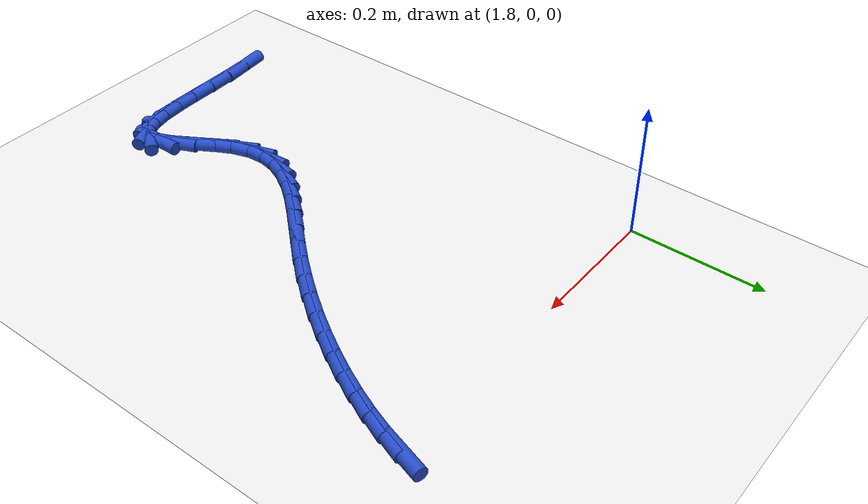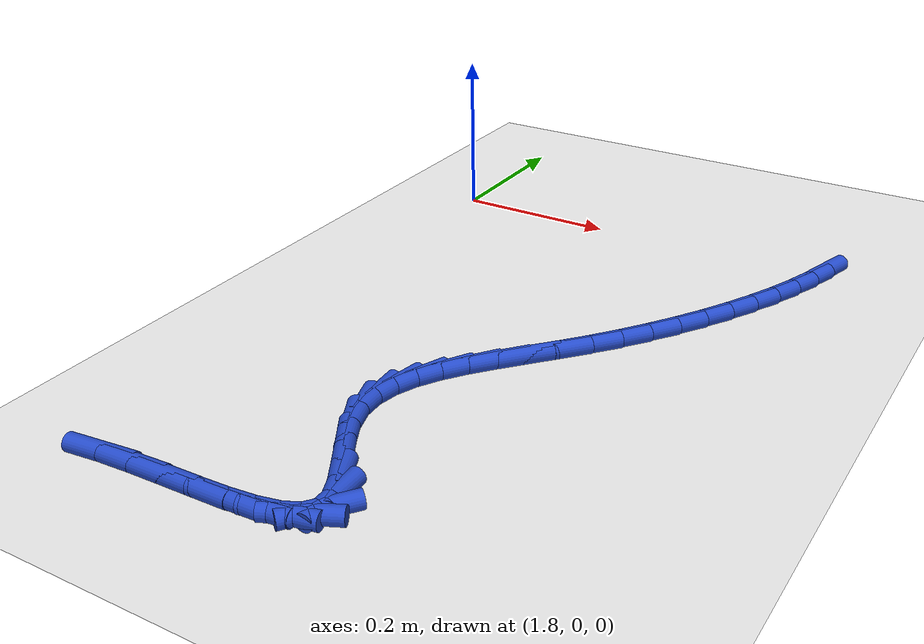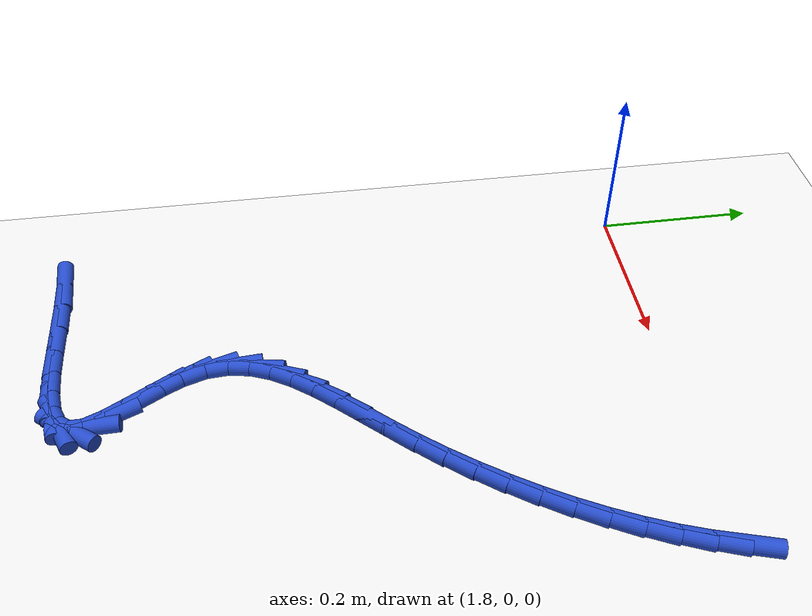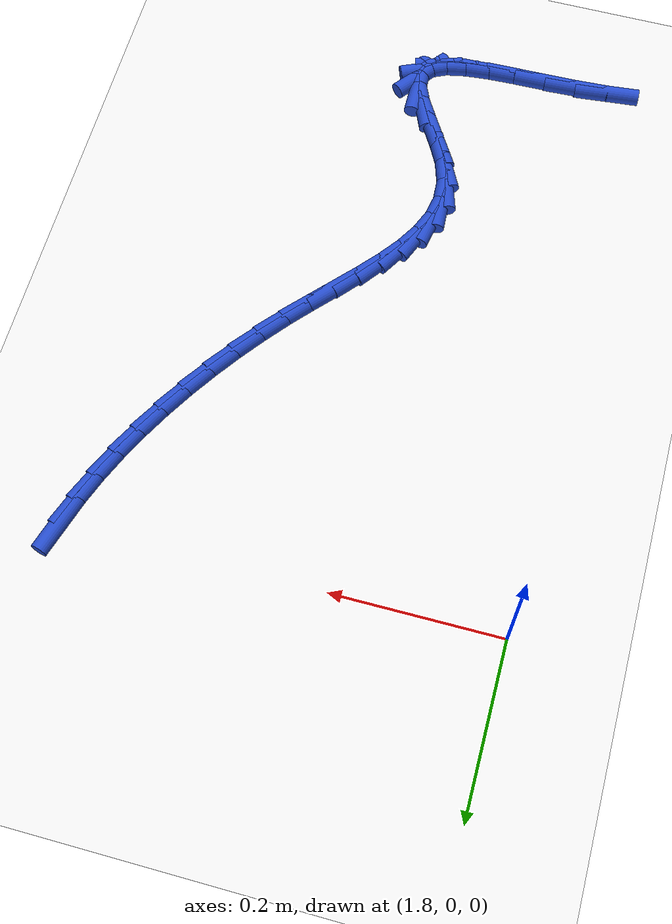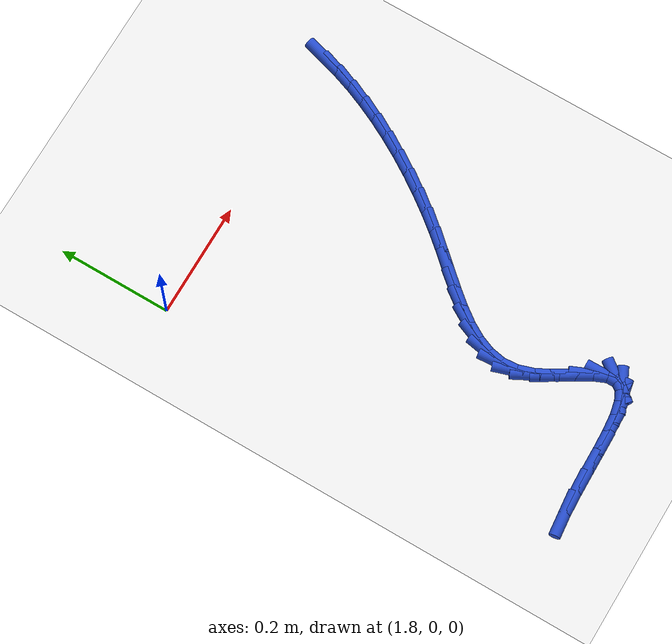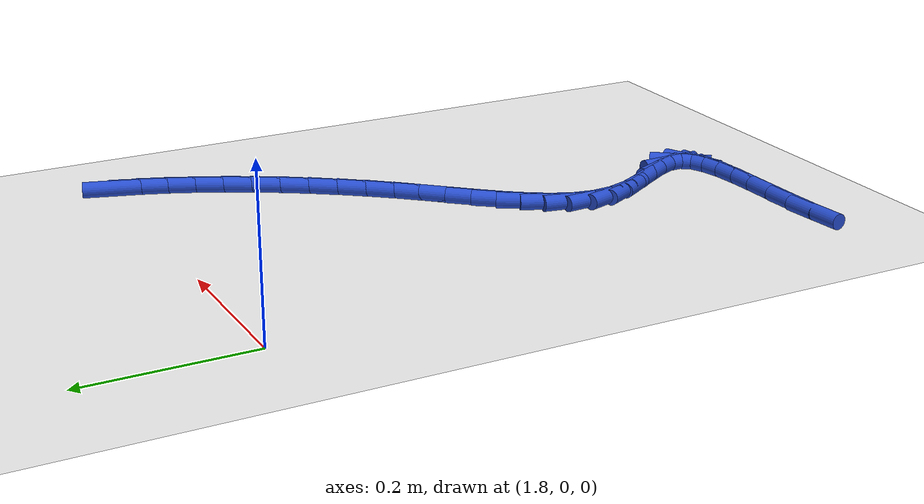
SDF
<sdf version="1.6">
 <world name="default">
  <model name="ground_plane">
   <static>1</static>
   <link name="link">
    <collision name="collision">
     <geometry><plane><normal>0 0 1</normal><size>100 100</size></plane></geometry>
     <surface><friction><ode><mu>100</mu><mu2>50</mu2></ode></friction></surface>
    </collision>
    <visual name="visual">
     <cast_shadows>0</cast_shadows>
     <geometry><plane><normal>0 0 1</normal><size>100 100</size></plane></geometry>
     <material>
      <script><uri>file://media/materials/scripts/gazebo.material</uri><name>Gazebo/WhiteGlow</name></script>
     </material>
    </visual>
   </link>
  </model>
  <model name="line">
   <link name="link_137">
    <pose>2.3043757729861003 0.0005063567734762131 0.01 0 1.57 1.282090099560398</pose>
    <collision name="collision">
     <geometry><cylinder><radius>0.01</radius><length>0.08</length></cylinder></geometry>
    </collision>
    <visual name="visual">
     <material>
      <script><name>Gazebo/Blue</name><uri>file://media/materials/scripts/gazebo.material</uri></script>
     </material>
     <geometry><cylinder><radius>0.01</radius><length>0.08</length></cylinder></geometry>
    </visual>
   </link>
   <link name="link_138">
    <pose>2.29511505952782 -0.03067404035095697 0.01 0 1.57 1.2250079994643701</pose>
    <collision name="collision">
     <geometry><cylinder><radius>0.01</radius><length>0.08</length></cylinder></geometry>
    </collision>
    <visual name="visual">
     <material>
      <script><name>Gazebo/Blue</name><uri>file://media/materials/scripts/gazebo.material</uri></script>
     </material>
     <geometry><cylinder><radius>0.01</radius><length>0.08</length></cylinder></geometry>
    </visual>
   </link>
   <link name="link_139">
    <pose>2.2837506471335614 -0.06221881323974488 0.01 0 1.57 1.1735758078880663</pose>
    <collision name="collision">
     <geometry><cylinder><radius>0.01</radius><length>0.08</length></cylinder></geometry>
    </collision>
    <visual name="visual">
     <material>
      <script><name>Gazebo/Blue</name><uri>file://media/materials/scripts/gazebo.material</uri></script>
     </material>
     <geometry><cylinder><radius>0.01</radius><length>0.08</length></cylinder></geometry>
    </visual>
   </link>
   <link name="link_140">
    <pose>2.2704356245568005 -0.09395746543543361 0.01 0 1.57 1.1266911585426547</pose>
    <collision name="collision">
     <geometry><cylinder><radius>0.01</radius><length>0.08</length></cylinder></geometry>
    </collision>
    <visual name="visual">
     <material>
      <script><name>Gazebo/Blue</name><uri>file://media/materials/scripts/gazebo.material</uri></script>
     </material>
     <geometry><cylinder><radius>0.01</radius><length>0.08</length></cylinder></geometry>
    </visual>
   </link>
   <link name="link_141">
    <pose>2.2553230805510127 -0.12571950048056946 0.01 0 1.57 1.0834113664984977</pose>
    <collision name="collision">
     <geometry><cylinder><radius>0.01</radius><length>0.08</length></cylinder></geometry>
    </collision>
    <visual name="visual">
     <material>
      <script><name>Gazebo/Blue</name><uri>file://media/materials/scripts/gazebo.material</uri></script>
     </material>
     <geometry><cylinder><radius>0.01</radius><length>0.08</length></cylinder></geometry>
    </visual>
   </link>
   <link name="link_142">
    <pose>2.2385661038696734 -0.15733442191769575 0.01 0 1.57 1.0429232118777647</pose>
    <collision name="collision">
     <geometry><cylinder><radius>0.01</radius><length>0.08</length></cylinder></geometry>
    </collision>
    <visual name="visual">
     <material>
      <script><name>Gazebo/Blue</name><uri>file://media/materials/scripts/gazebo.material</uri></script>
     </material>
     <geometry><cylinder><radius>0.01</radius><length>0.08</length></cylinder></geometry>
    </visual>
   </link>
   <link name="link_143">
    <pose>2.220317783266259 -0.18863173328935964 0.01 0 1.57 1.0045126916023308</pose>
    <collision name="collision">
     <geometry><cylinder><radius>0.01</radius><length>0.08</length></cylinder></geometry>
    </collision>
    <visual name="visual">
     <material>
      <script><name>Gazebo/Blue</name><uri>file://media/materials/scripts/gazebo.material</uri></script>
     </material>
     <geometry><cylinder><radius>0.01</radius><length>0.08</length></cylinder></geometry>
    </visual>
   </link>
   <link name="link_144">
    <pose>2.200731207494246 -0.21944093813810456 0.01 0 1.57 0.9675366140866258</pose>
    <collision name="collision">
     <geometry><cylinder><radius>0.01</radius><length>0.08</length></cylinder></geometry>
    </collision>
    <visual name="visual">
     <material>
      <script><name>Gazebo/Blue</name><uri>file://media/materials/scripts/gazebo.material</uri></script>
     </material>
     <geometry><cylinder><radius>0.01</radius><length>0.08</length></cylinder></geometry>
    </visual>
   </link>
   <link name="link_145">
    <pose>2.179959465307108 -0.2495915400064775 0.01 0 1.57 0.9313961160571534</pose>
    <collision name="collision">
     <geometry><cylinder><radius>0.01</radius><length>0.08</length></cylinder></geometry>
    </collision>
    <visual name="visual">
     <material>
      <script><name>Gazebo/Blue</name><uri>file://media/materials/scripts/gazebo.material</uri></script>
     </material>
     <geometry><cylinder><radius>0.01</radius><length>0.08</length></cylinder></geometry>
    </visual>
   </link>
   <link name="link_146">
    <pose>2.158155645458323 -0.2789130424370221 0.01 0 1.57 0.8955112801831502</pose>
    <collision name="collision">
     <geometry><cylinder><radius>0.01</radius><length>0.08</length></cylinder></geometry>
    </collision>
    <visual name="visual">
     <material>
      <script><name>Gazebo/Blue</name><uri>file://media/materials/scripts/gazebo.material</uri></script>
     </material>
     <geometry><cylinder><radius>0.01</radius><length>0.08</length></cylinder></geometry>
    </visual>
   </link>
   <link name="link_147">
    <pose>2.1354728367013647 -0.3072349489722852 0.01 0 1.57 0.860104357106073</pose>
    <collision name="collision">
     <geometry><cylinder><radius>0.01</radius><length>0.08</length></cylinder></geometry>
    </collision>
    <visual name="visual">
     <material>
      <script><name>Gazebo/Blue</name><uri>file://media/materials/scripts/gazebo.material</uri></script>
     </material>
     <geometry><cylinder><radius>0.01</radius><length>0.08</length></cylinder></geometry>
    </visual>
   </link>
   <link name="link_148">
    <pose>2.112089537823026 -0.33440169002918296 0.01 0 1.57 0.8378503249085305</pose>
    <collision name="collision">
     <geometry><cylinder><radius>0.01</radius><length>0.08</length></cylinder></geometry>
    </collision>
    <visual name="visual">
     <material>
      <script><name>Gazebo/Blue</name><uri>file://media/materials/scripts/gazebo.material</uri></script>
     </material>
     <geometry><cylinder><radius>0.01</radius><length>0.08</length></cylinder></geometry>
    </visual>
   </link>
   <link name="link_149">
    <pose>2.088595513644221 -0.36049929021496 0.01 0 1.57 0.8401139908336285</pose>
    <collision name="collision">
     <geometry><cylinder><radius>0.01</radius><length>0.08</length></cylinder></geometry>
    </collision>
    <visual name="visual">
     <material>
      <script><name>Gazebo/Blue</name><uri>file://media/materials/scripts/gazebo.material</uri></script>
     </material>
     <geometry><cylinder><radius>0.01</radius><length>0.08</length></cylinder></geometry>
    </visual>
   </link>
   <link name="link_150">
    <pose>2.0659137982494236 -0.38580954989076993 0.01 0 1.57 0.8698703260176944</pose>
    <collision name="collision">
     <geometry><cylinder><radius>0.01</radius><length>0.08</length></cylinder></geometry>
    </collision>
    <visual name="visual">
     <material>
      <script><name>Gazebo/Blue</name><uri>file://media/materials/scripts/gazebo.material</uri></script>
     </material>
     <geometry><cylinder><radius>0.01</radius><length>0.08</length></cylinder></geometry>
    </visual>
   </link>
   <link name="link_151">
    <pose>2.0449770198375883 -0.4106199053860429 0.01 0 1.57 0.932236184607205</pose>
    <collision name="collision">
     <geometry><cylinder><radius>0.01</radius><length>0.08</length></cylinder></geometry>
    </collision>
    <visual name="visual">
     <material>
      <script><name>Gazebo/Blue</name><uri>file://media/materials/scripts/gazebo.material</uri></script>
     </material>
     <geometry><cylinder><radius>0.01</radius><length>0.08</length></cylinder></geometry>
    </visual>
   </link>
   <link name="link_152">
    <pose>2.0267178066076705 -0.4352177930302092 0.01 0 1.57 1.0349997266308149</pose>
    <collision name="collision">
     <geometry><cylinder><radius>0.01</radius><length>0.08</length></cylinder></geometry>
    </collision>
    <visual name="visual">
     <material>
      <script><name>Gazebo/Blue</name><uri>file://media/materials/scripts/gazebo.material</uri></script>
     </material>
     <geometry><cylinder><radius>0.01</radius><length>0.08</length></cylinder></geometry>
    </visual>
   </link>
   <link name="link_153">
    <pose>2.012068786758626 -0.4598906491526967 0.01 0 1.57 1.1871227988503308</pose>
    <collision name="collision">
     <geometry><cylinder><radius>0.01</radius><length>0.08</length></cylinder></geometry>
    </collision>
    <visual name="visual">
     <material>
      <script><name>Gazebo/Blue</name><uri>file://media/materials/scripts/gazebo.material</uri></script>
     </material>
     <geometry><cylinder><radius>0.01</radius><length>0.08</length></cylinder></geometry>
    </visual>
   </link>
   <link name="link_154">
    <pose>2.0019625884894103 -0.48492591008293634 0.01 0 1.57 1.392423203795634</pose>
    <collision name="collision">
     <geometry><cylinder><radius>0.01</radius><length>0.08</length></cylinder></geometry>
    </collision>
    <visual name="visual">
     <material>
      <script><name>Gazebo/Blue</name><uri>file://media/materials/scripts/gazebo.material</uri></script>
     </material>
     <geometry><cylinder><radius>0.01</radius><length>0.08</length></cylinder></geometry>
    </visual>
   </link>
   <link name="link_155">
    <pose>1.9973318399989803 -0.5106110121503561 0.01 0 1.57 -1.504134516656553</pose>
    <collision name="collision">
     <geometry><cylinder><radius>0.01</radius><length>0.08</length></cylinder></geometry>
    </collision>
    <visual name="visual">
     <material>
      <script><name>Gazebo/Blue</name><uri>file://media/materials/scripts/gazebo.material</uri></script>
     </material>
     <geometry><cylinder><radius>0.01</radius><length>0.08</length></cylinder></geometry>
    </visual>
   </link>
   <link name="link_156">
    <pose>1.9991091694862908 -0.537233391684387 0.01 0 1.57 -1.2568264587689804</pose>
    <collision name="collision">
     <geometry><cylinder><radius>0.01</radius><length>0.08</length></cylinder></geometry>
    </collision>
    <visual name="visual">
     <material>
      <script><name>Gazebo/Blue</name><uri>file://media/materials/scripts/gazebo.material</uri></script>
     </material>
     <geometry><cylinder><radius>0.01</radius><length>0.08</length></cylinder></geometry>
    </visual>
   </link>
   <link name="link_157">
    <pose>2.00814152092044 -0.5650500361613857 0.01 0 1.57 -1.0885978490760049</pose>
    <collision name="collision">
     <geometry><cylinder><radius>0.01</radius><length>0.08</length></cylinder></geometry>
    </collision>
    <visual name="visual">
     <material>
      <script><name>Gazebo/Blue</name><uri>file://media/materials/scripts/gazebo.material</uri></script>
     </material>
     <geometry><cylinder><radius>0.01</radius><length>0.08</length></cylinder></geometry>
    </visual>
   </link>
   <link name="link_158">
    <pose>2.0230457985728565 -0.5935254634141084 0.01 0 1.57 -1.0209484523012322</pose>
    <collision name="collision">
     <geometry><cylinder><radius>0.01</radius><length>0.08</length></cylinder></geometry>
    </collision>
    <visual name="visual">
     <material>
      <script><name>Gazebo/Blue</name><uri>file://media/materials/scripts/gazebo.material</uri></script>
     </material>
     <geometry><cylinder><radius>0.01</radius><length>0.08</length></cylinder></geometry>
    </visual>
   </link>
   <link name="link_159">
    <pose>2.0400545253574847 -0.6212768745900701 0.01 0 1.57 -1.0341992672090168</pose>
    <collision name="collision">
     <geometry><cylinder><radius>0.01</radius><length>0.08</length></cylinder></geometry>
    </collision>
    <visual name="visual">
     <material>
      <script><name>Gazebo/Blue</name><uri>file://media/materials/scripts/gazebo.material</uri></script>
     </material>
     <geometry><cylinder><radius>0.01</radius><length>0.08</length></cylinder></geometry>
    </visual>
   </link>
   <link name="link_160">
    <pose>2.0552836282848834 -0.6468800371734775 0.01 0 1.57 -1.1611711361332597</pose>
    <collision name="collision">
     <geometry><cylinder><radius>0.01</radius><length>0.08</length></cylinder></geometry>
    </collision>
    <visual name="visual">
     <material>
      <script><name>Gazebo/Blue</name><uri>file://media/materials/scripts/gazebo.material</uri></script>
     </material>
     <geometry><cylinder><radius>0.01</radius><length>0.08</length></cylinder></geometry>
    </visual>
   </link>
   <link name="link_161">
    <pose>2.064849034365612 -0.6689107186485378 0.01 0 1.57 -1.5528628429003097</pose>
    <collision name="collision">
     <geometry><cylinder><radius>0.01</radius><length>0.08</length></cylinder></geometry>
    </collision>
    <visual name="visual">
     <material>
      <script><name>Gazebo/Blue</name><uri>file://media/materials/scripts/gazebo.material</uri></script>
     </material>
     <geometry><cylinder><radius>0.01</radius><length>0.08</length></cylinder></geometry>
    </visual>
   </link>
   <link name="link_162">
    <pose>2.0651567767765964 -0.6860690923973055 0.01 0 1.57 0.9162504181916288</pose>
    <collision name="collision">
     <geometry><cylinder><radius>0.01</radius><length>0.08</length></cylinder></geometry>
    </collision>
    <visual name="visual">
     <material>
      <script><name>Gazebo/Blue</name><uri>file://media/materials/scripts/gazebo.material</uri></script>
     </material>
     <geometry><cylinder><radius>0.01</radius><length>0.08</length></cylinder></geometry>
    </visual>
   </link>
   <link name="link_163">
    <pose>2.05570751713222 -0.6983823978001014 0.01 0 1.57 0.4355190983160368</pose>
    <collision name="collision">
     <geometry><cylinder><radius>0.01</radius><length>0.08</length></cylinder></geometry>
    </collision>
    <visual name="visual">
     <material>
      <script><name>Gazebo/Blue</name><uri>file://media/materials/scripts/gazebo.material</uri></script>
     </material>
     <geometry><cylinder><radius>0.01</radius><length>0.08</length></cylinder></geometry>
    </visual>
   </link>
   <link name="link_164">
    <pose>2.037873973961521 -0.706680666277861 0.01 0 1.57 0.20361073059182824</pose>
    <collision name="collision">
     <geometry><cylinder><radius>0.01</radius><length>0.08</length></cylinder></geometry>
    </collision>
    <visual name="visual">
     <material>
      <script><name>Gazebo/Blue</name><uri>file://media/materials/scripts/gazebo.material</uri></script>
     </material>
     <geometry><cylinder><radius>0.01</radius><length>0.08</length></cylinder></geometry>
    </visual>
   </link>
   <link name="link_165">
    <pose>2.0130549225181698 -0.7118051031271513 0.01 0 1.57 0.09156166997656272</pose>
    <collision name="collision">
     <geometry><cylinder><radius>0.01</radius><length>0.08</length></cylinder></geometry>
    </collision>
    <visual name="visual">
     <material>
      <script><name>Gazebo/Blue</name><uri>file://media/materials/scripts/gazebo.material</uri></script>
     </material>
     <geometry><cylinder><radius>0.01</radius><length>0.08</length></cylinder></geometry>
    </visual>
   </link>
   <link name="link_166">
    <pose>1.9826491380558353 -0.7145969136445386 0.01 0 1.57 0.03757261920992057</pose>
    <collision name="collision">
     <geometry><cylinder><radius>0.01</radius><length>0.08</length></cylinder></geometry>
    </collision>
    <visual name="visual">
     <material>
      <script><name>Gazebo/Blue</name><uri>file://media/materials/scripts/gazebo.material</uri></script>
     </material>
     <geometry><cylinder><radius>0.01</radius><length>0.08</length></cylinder></geometry>
    </visual>
   </link>
   <link name="link_167">
    <pose>1.9480553958281828 -0.7158973031265891 0.01 0 1.57 0.017390511911457535</pose>
    <collision name="collision">
     <geometry><cylinder><radius>0.01</radius><length>0.08</length></cylinder></geometry>
    </collision>
    <visual name="visual">
     <material>
      <script><name>Gazebo/Blue</name><uri>file://media/materials/scripts/gazebo.material</uri></script>
     </material>
     <geometry><cylinder><radius>0.01</radius><length>0.08</length></cylinder></geometry>
    </visual>
   </link>
   <link name="link_168">
    <pose>1.910672471088884 -0.7165474768698689 0.01 0 1.57 0.021690974998019277</pose>
    <collision name="collision">
     <geometry><cylinder><radius>0.01</radius><length>0.08</length></cylinder></geometry>
    </collision>
    <visual name="visual">
     <material>
      <script><name>Gazebo/Blue</name><uri>file://media/materials/scripts/gazebo.material</uri></script>
     </material>
     <geometry><cylinder><radius>0.01</radius><length>0.08</length></cylinder></geometry>
    </visual>
   </link>
   <link name="link_169">
    <pose>1.8718991390916049 -0.7173886401709446 0.01 0 1.57 0.04828849688256428</pose>
    <collision name="collision">
     <geometry><cylinder><radius>0.01</radius><length>0.08</length></cylinder></geometry>
    </collision>
    <visual name="visual">
     <material>
      <script><name>Gazebo/Blue</name><uri>file://media/materials/scripts/gazebo.material</uri></script>
     </material>
     <geometry><cylinder><radius>0.01</radius><length>0.08</length></cylinder></geometry>
    </visual>
   </link>
   <link name="link_170">
    <pose>1.8331341750900154 -0.7192619983263822 0.01 0 1.57 0.09995954845160501</pose>
    <collision name="collision">
     <geometry><cylinder><radius>0.01</radius><length>0.08</length></cylinder></geometry>
    </collision>
    <visual name="visual">
     <material>
      <script><name>Gazebo/Blue</name><uri>file://media/materials/scripts/gazebo.material</uri></script>
     </material>
     <geometry><cylinder><radius>0.01</radius><length>0.08</length></cylinder></geometry>
    </visual>
   </link>
  </model>
 </world>
</sdf>
